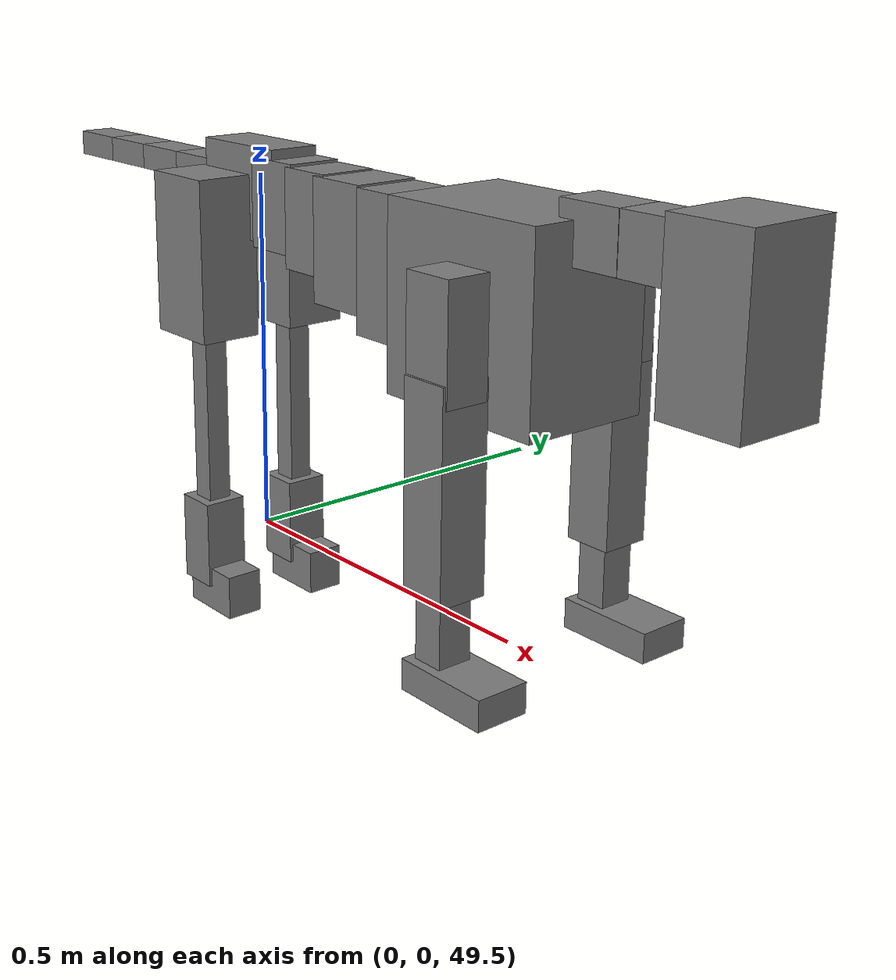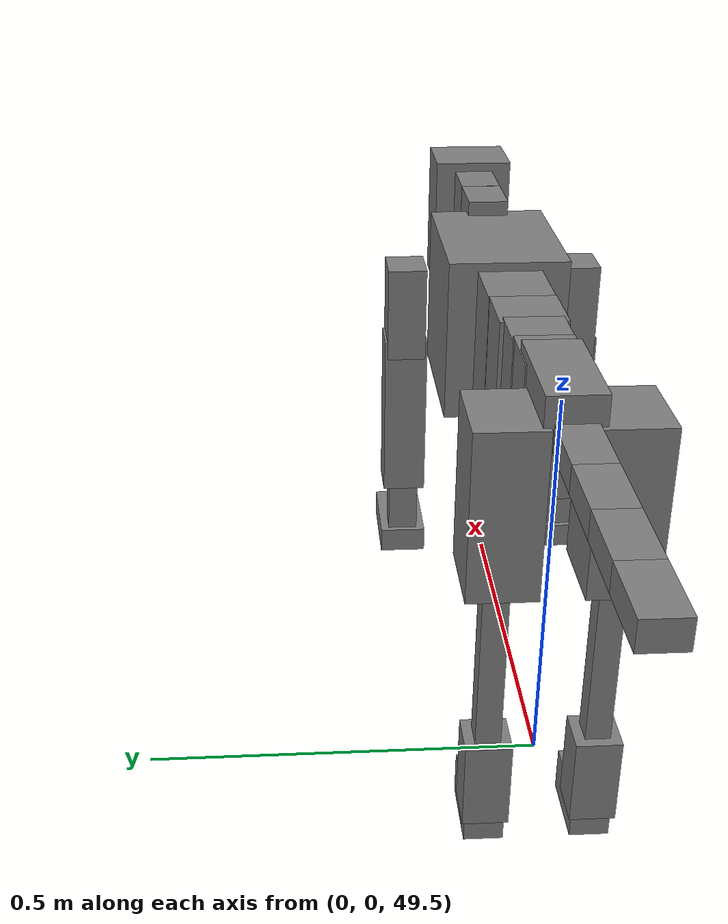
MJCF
<mujoco model="dog">

    <default>
        <joint armature="0.02" stiffness="1" damping="0.2" limited="true"/>
        <geom condim="3" friction="1 0.05 0.05" margin="0.01"/>
        <motor ctrllimited="true" ctrlrange="-1.0 1.0" forcelimited="true" gear="50"/>
    </default>

    <compiler inertiafromgeom="true" angle="radian"/>

    <option timestep="0.016" iterations="50" tolerance="1e-10" solver="Newton" jacobian="dense" cone="pyramidal"/>

    <size nconmax="20000" njmax="60000" nstack="5000000"/>
    <visual>
        <map force="0.1" zfar="30"/>
        <rgba haze="0.15 0.25 0.35 1"/>
        <quality shadowsize="2048"/>
        <global offwidth="800" offheight="800"/>
    </visual>

    <asset>
        <texture type="skybox" builtin="gradient" rgb1="0.3 0.5 0.7" rgb2="0 0 0" width="512" height="512"/>
        <texture name="texplane" type="2d" builtin="checker" rgb1=".2 .3 .4" rgb2=".1 0.15 0.2" width="512" height="512"
                 mark="cross" markrgb=".8 .8 .8"/>
        <texture name="texgeom" type="cube" builtin="flat" mark="cross" width="127" height="1278" rgb1="0.8 0.6 0.4"
                 rgb2="0.8 0.6 0.4" markrgb="1 1 1" random="0.01"/>

        <material name="matplane" reflectance="0.3" texture="texplane" texrepeat="1 1" texuniform="true"/>
        <material name="matgeom" texture="texgeom" texuniform="true" rgba="0.8 0.6 .4 1"/>
    </asset>

    <worldbody>
        <geom name="floor" pos="0 0 0" size="0 0 .25" type="plane" material="matplane" condim="3"/>

        <light directional="false" diffuse=".2 .2 .2" specular="0 0 0" pos="0 0 5" dir="0 0 -1" castshadow="false"/>
        <light mode="targetbodycom" target="torso" directional="false" diffuse=".8 .8 .8" specular="0.3 0.3 0.3"
               pos="0 0 4.0" dir="0 0 -1"/>

        <body name="root" pos="0 0 50">
            <freejoint name="root_1"/>
            <geom type="box" pos="0 0 -0.02" size="0.0774  0.0358  0.063" density="2030"/>

            <body name="spine1" pos="0.054 0 0">
                <joint name="spine1_y" axis="0 1 0" range="0 0.7" limited="true"/>
                <geom type="box" pos="0.02375 0 -0.03" size="0.04375  0.0375  0.05985" density="2030"/>

                <body name="spine2" pos="0.0612 0 0">
                    <joint name="spine2_y" axis="0 1 0" range="-0.15 0.15" limited="true"/>
                    <geom type="box" pos="0.03555  0  -0.04" size="0.04055  0.039  0.06615" density="2030"/>

                    <body name="spine3" pos="0.0730 0 0">
                        <joint name="spine3_y" axis="0 1 0" range="-0.15 0.15" limited="true"/>
                        <geom type="box" pos="0.03555  0  -0.057" size="0.04555  0.0445  0.081" density="2030"/>

                        <body name="spine4" pos="0.0780 0 0">
                            <joint name="spine4_y" axis="0 1 0" range="-0.15 0.15" limited="true"/>
                            <geom type="box" pos="0.05265  0  -0.07" size="0.05265  0.045  0.09135" density="2030"/>

                            <body name="torso" pos="0.1082 0 0">
                                <joint name="torso_y" axis="0 1 0" range="-0.15 0.15" limited="true"/>
                                <geom type="box" pos="0.11925  0  -0.085" size="0.11925  0.085  0.11745"
                                      density="2030"/>

                                <body name="neck1" pos="0.2160  0   0.0180">
                                    <joint name="neck1_y" axis="0 1 0" range="-1.2  -1" limited="true"/>
                                    <geom type="box" pos="0.0423  0  0" size="0.0423  0.03  0.036" density="2325"/>

                                    <body name="neck2" pos="0.0853  0  0">
                                        <joint name="neck2_y" axis="0 1 0" range="0.1  0" limited="true"/>
                                        <geom type="box" pos="0.0423  0  0" size="0.0423  0.03  0.036" density="2325"/>

                                        <body name="head" pos="0.0853  0  0">
                                            <joint name="head_y" axis="0 1 0" range="-0.3  -0.2" limited="true"/>
                                            <geom type="box" pos="0.0531  0  -0.055" size="0.0531  0.06  0.1044"
                                                  density="4030"/>

                                        </body>
                                    </body>
                                </body>

                                <body name="front_shoulder" pos="0.156  0   -0.0480">
                                    <joint name="front_shoulder_y" axis="0 1 0" range="-1 1.5" limited="true"/>
                                    <geom type="box" pos="0 0.13 -0.0441" size="0.0336  0.0287  0.0708" density="1158"/>
                                    <geom type="box" pos="0 -0.13 -0.0441" size="0.0336  0.0287  0.0708"
                                          density="1158"/>

                                    <body name="front_elbow" pos="0  0  -0.0883">
                                        <joint name="front_elbow_y" axis="0 1 0" range="-2 0" limited="true"/>
                                        <geom type="box" pos="0 0.13 -0.1267" size="0.0314  0.0321  0.1267"
                                              density="1081"/>
                                        <geom type="box" pos="0 -0.13 -0.1267" size="0.0314  0.0321  0.1267"
                                              density="1081"/>

                                        <body name="front_wrist" pos="0  0  -0.2535">
                                            <joint name="front_wrist_y" axis="0 1 0" range="-0.2 0" limited="true"/>
                                            <geom type="box" pos="0 0.13 -0.0469" size="0.0204  0.0226  0.0601"
                                                  density="1664"/>
                                            <geom type="box" pos="0 -0.13 -0.0469" size="0.0204  0.0226  0.0601"
                                                  density="1664"/>

                                            <body name="front_finger_end" pos="0  0  -0.0939">
                                                <joint name="front_finger_y" axis="0 1 0" range="-0.4 1"
                                                       limited="true"/>
                                                <geom type="box" pos="0.0351  0.13  -0.0041"
                                                      size="0.0644  0.0351  0.0191" density="1515"/>
                                                <geom type="box" pos="0.0351  -0.13  -0.0041"
                                                      size="0.0644  0.0351  0.0191" density="1515"/>

                                            </body>

                                        </body>
                                    </body>
                                </body>

                            </body>
                        </body>
                    </body>
                </body>
            </body>

            <body name="back_hip" pos="-0.03 0 -0.018">
                <joint name="back_hip_y" axis="0 1 0" range="-1.5 0.3" limited="true"/>
                <geom type="box" pos="0 0.07 -0.0870" size="0.0554  0.0435  0.1098" density="1154"/>
                <geom type="box" pos="0 -0.07 -0.0870" size="0.0554  0.0435  0.1098" density="1154"/>

                <body name="back_knee" pos="0  0  -0.1740">
                    <joint name="back_knee_y" axis="0 1 0" range="0 2.8" limited="true"/>
                    <geom type="box" pos="0 0.07 -0.1362" size="0.0168  0.0165  0.1518" density="1227"/>
                    <geom type="box" pos="0 -0.07 -0.1362" size="0.0168  0.0165  0.1518" density="1227"/>

                    <body name="back_ankle" pos="0  0  -0.2724">
                        <joint name="back_ankle_y" axis="0 1 0" range="-2.2 0" limited="true"/>
                        <geom type="box" pos="0 0.07 -0.0495" size="0.0300  0.0300  0.0608" density="1284"/>
                        <geom type="box" pos="0 -0.07 -0.0495" size="0.0300  0.0300  0.0608" density="1284"/>

                        <body name="back_toe_end" pos="0  0  -0.0991">
                            <joint name="back_toe_y" axis="0 1 0" range="-0.4 1" limited="true"/>
                            <geom type="box" pos="0.0258  0.07  -0.0155" size="0.0474  0.0258  0.0305" density="1515"/>
                            <geom type="box" pos="0.0258  -0.07  -0.0155" size="0.0474  0.0258  0.0305" density="1515"/>

                        </body>
                    </body>
                </body>
            </body>

            <body name="tail1" pos="-0.074 0 -0.006">
                <joint name="tail1_y" axis="0 1 0" range="-0.2 0.2" limited="true"/>
                <geom type="box" pos="-0.0536  0  0" size="0.045  0.025  0.0175" density="1587"/>

                <body name="tail2" pos="-0.09 0 0">
                    <joint name="tail2_y" axis="0 1 0" range="-0.2 0.2" limited="true"/>
                    <geom type="box" pos="-0.0536  0  0" size="0.045  0.025  0.0175" density="1587"/>

                    <body name="tail3" pos="-0.09 0 0">
                        <joint name="tail3_y" axis="0 1 0" range="-0.2 0.2" limited="true"/>
                        <geom type="box" pos="-0.0536  0  0" size="0.045  0.025  0.0175" density="1587"/>

                        <body name="tail4" pos="-0.09 0 0">
                            <joint name="tail4_y" axis="0 1 0" range="-0.2 0.2" limited="true"/>
                            <geom type="box" pos="-0.0536  0  0" size="0.045  0.025  0.0175" density="1587"/>

                        </body>
                    </body>
                </body>
            </body>
        </body>
    </worldbody>

    <actuator>
        <motor joint="spine1_y" forcerange="-150 150     "/>
        <motor joint="spine2_y" forcerange="-150 150     "/>
        <motor joint="spine3_y" forcerange="-150 150     "/>
        <motor joint="spine4_y" forcerange="-150 150     "/>
        <motor joint="torso_y" forcerange="-150 150     "/>
        <motor joint="neck1_y" forcerange="-100 100       "/>
        <motor joint="neck2_y" forcerange="-100 100       "/>
        <motor joint="head_y" forcerange="-150 150       "/>
        <motor joint="front_shoulder_y" forcerange="-156.07 135.11"/>
        <motor joint="front_elbow_y" forcerange="-145.71 187.91"/>
        <motor joint="front_wrist_y" forcerange="-126.47 54.48"/>
        <motor joint="front_finger_y" forcerange="-96.99 50.25"/>
        <motor joint="back_hip_y" forcerange="-390.52 389.25"/>
        <motor joint="back_knee_y" forcerange="-232.48 207.69"/>
        <motor joint="back_angle_y" forcerange="-241.67 138.16"/>
        <motor joint="back_toe_y" forcerange="-48.82 77.90"/>
        <motor joint="tail1_y" forcerange="-50 50     "/>
        <motor joint="tail2_y" forcerange="-50 50     "/>
        <motor joint="tail3_y" forcerange="-50 50     "/>
        <motor joint="tail4_y" forcerange="-50 50     "/>
    </actuator>
</mujoco>
